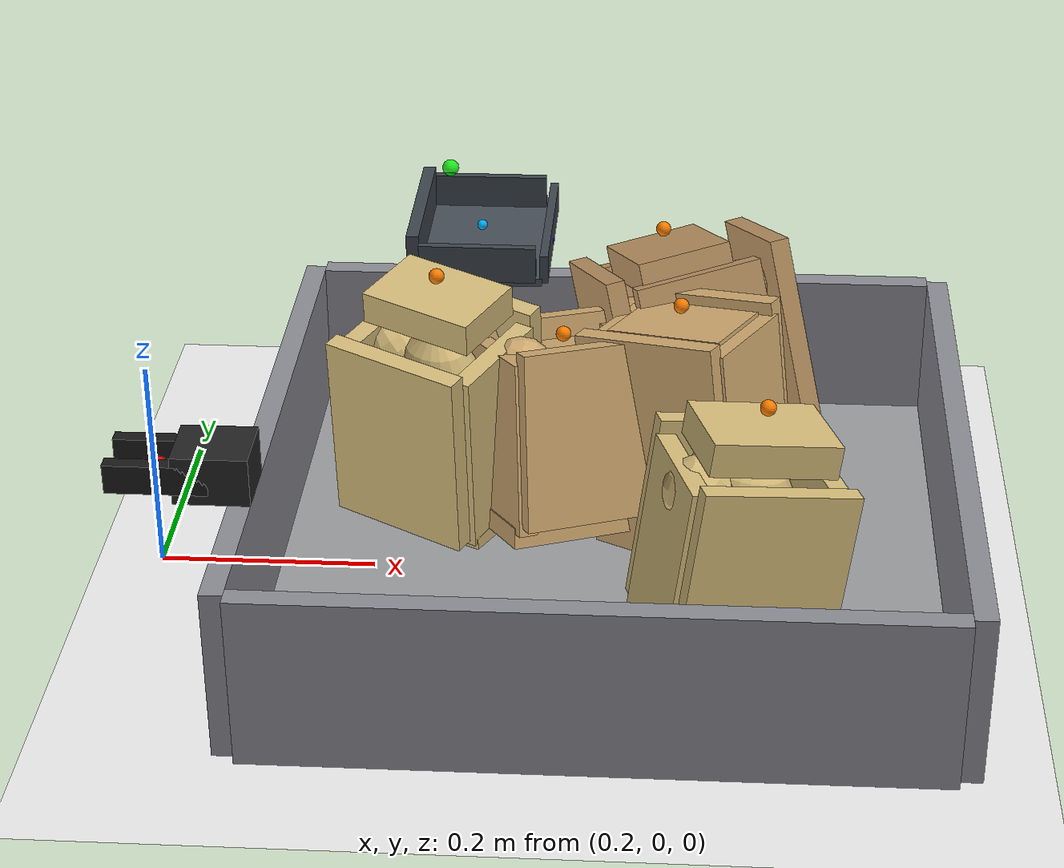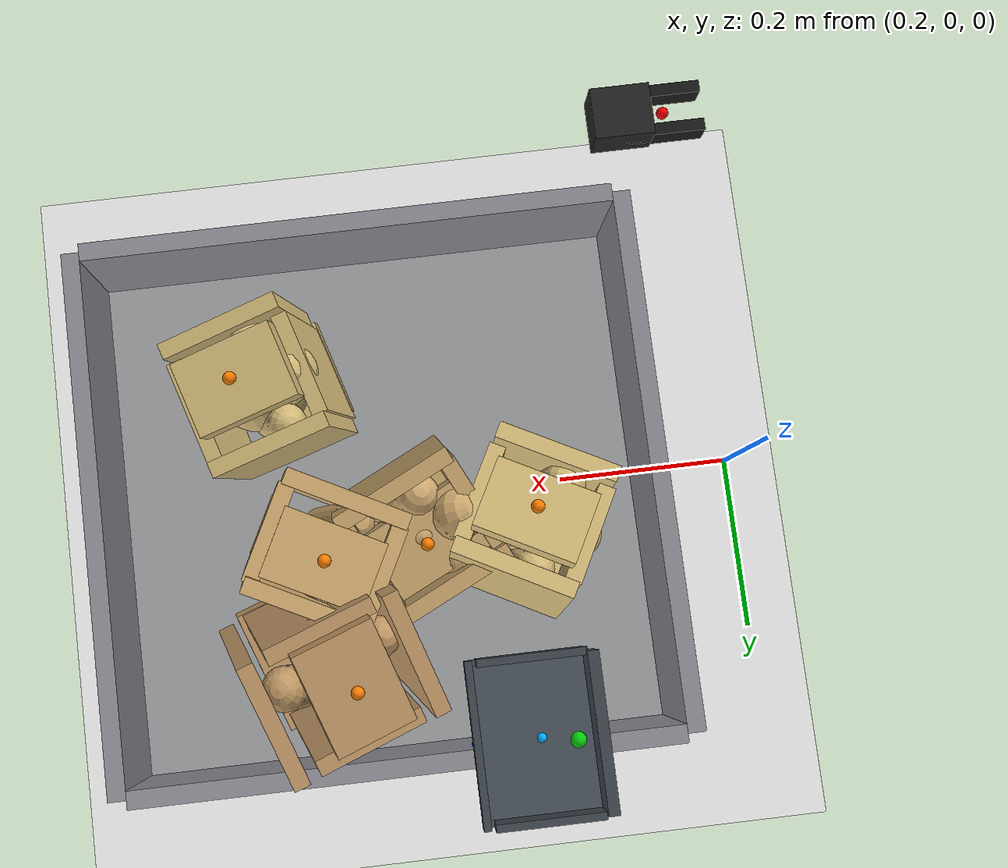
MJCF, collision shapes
<mujoco model="top_grasp_flat_scoop_drag_seed5">
  <compiler angle="radian" coordinate="local" inertiafromgeom="true" meshdir="D:/Michael/2025/01.Research/01.Parceldetection/16.Pybullet/bullet3-master (1)/bullet3-master/examples/pybullet/examples/DeformableTest/Sackcodex2/object"/>
  <option timestep="0.002" gravity="0 0 -9.81" integrator="implicitfast" iterations="100" tolerance="1e-8"/>
  <size memory="768M" nconmax="12000"/>

  <visual>
    <global azimuth="128" elevation="-20"/>
    <headlight ambient="0.34 0.34 0.34" diffuse="0.78 0.78 0.78" specular="0.15 0.15 0.15"/>
    <rgba haze="0.11 0.13 0.18 1"/>
  </visual>

  <default>
    <geom condim="4" friction="1.15 0.03 0.01" margin="0.003" solimp="0.93 0.98 0.003" solref="0.012 1"/>
    <joint damping="1.2" armature="0.002"/>
    <position kp="2500" forcelimited="true" forcerange="-420 420"/>
    <motor ctrllimited="true"/>
  </default>

  <asset>
    <mesh name="sack_0_visual_mesh" file="sack9.obj" scale="0.0670 0.0670 0.0708"/>
    <mesh name="sack_1_visual_mesh" file="sack2.obj" scale="0.0742 0.0742 0.0783"/>
    <mesh name="sack_2_visual_mesh" file="sack6Apply.obj" scale="0.0679 0.0679 0.0698"/>
    <mesh name="sack_3_visual_mesh" file="sack9.obj" scale="0.0700 0.0700 0.0775"/>
    <mesh name="sack_4_visual_mesh" file="sack.obj" scale="0.0664 0.0664 0.0691"/>
  </asset>

  <worldbody>
    <light name="key" pos="0.85 0.15 1.8" dir="-0.2 -0.1 -1" directional="true"/>
    <geom name="floor" type="plane" size="2 2 0.1" rgba="0.93 0.93 0.93 1"/>
    <geom name="work_pad" type="box" pos="0.62 0 0.012" size="0.30 0.30 0.012" rgba="0.60 0.61 0.62 1" friction="1.4 0.05 0.01"/>
    <geom name="corral_front" type="box" pos="0.93 0.00 0.08" size="0.010 0.30 0.08" rgba="0.55 0.55 0.58 0.22" friction="1.0 0.03 0.01"/>
    <geom name="corral_back" type="box" pos="0.31 0.00 0.08" size="0.010 0.30 0.08" rgba="0.55 0.55 0.58 0.18" friction="1.0 0.03 0.01"/>
    <geom name="corral_left" type="box" pos="0.62 0.30 0.08" size="0.30 0.010 0.08" rgba="0.55 0.55 0.58 0.14" friction="1.0 0.03 0.01"/>
    <geom name="corral_right" type="box" pos="0.62 -0.30 0.08" size="0.30 0.010 0.08" rgba="0.55 0.55 0.58 0.14" friction="1.0 0.03 0.01"/>
    <camera name="overview" pos="1.22 0.00 0.92" xyaxes="0 1 0 -0.46 0 0.88"/>

    <body name="gripper_mocap" mocap="true" pos="0.36 -0.33 0.30" quat="0.707107 0 -0.707107 0"/>
    <body name="scoop_mocap" mocap="true" pos="0.42 0.28 0.20" quat="1 0 0 0"/>

    <body name="gripper_ctrl_base" pos="0.36 -0.33 0.30">
      <inertial pos="0 0 0" mass="0.001" diaginertia="1e-6 1e-6 1e-6"/>
      <joint name="gripper_ctrl_x" type="slide" axis="1 0 0" limited="true" range="0.20 1.00"/>
      <body name="gripper_ctrl_y_body">
        <inertial pos="0 0 0" mass="0.001" diaginertia="1e-6 1e-6 1e-6"/>
        <joint name="gripper_ctrl_y" type="slide" axis="0 1 0" limited="true" range="-0.60 0.60"/>
        <body name="gripper_ctrl_z_body">
          <inertial pos="0 0 0" mass="0.001" diaginertia="1e-6 1e-6 1e-6"/>
          <joint name="gripper_ctrl_z" type="slide" axis="0 0 1" limited="true" range="0.04 0.70"/>
          <body name="gripper_ctrl_yaw_body">
            <inertial pos="0 0 0" mass="0.001" diaginertia="1e-6 1e-6 1e-6"/>
            <joint name="gripper_ctrl_yaw" type="hinge" axis="0 0 1" limited="true" range="-3.1416 3.1416"/>
            <body name="gripper_ctrl_pitch_body">
              <inertial pos="0 0 0" mass="0.001" diaginertia="1e-6 1e-6 1e-6"/>
              <joint name="gripper_ctrl_pitch" type="hinge" axis="0 1 0" limited="true" range="-3.1416 3.1416"/>
              <body name="gripper_ctrl_roll_body">
                <inertial pos="0 0 0" mass="0.001" diaginertia="1e-6 1e-6 1e-6"/>
                <joint name="gripper_ctrl_roll" type="hinge" axis="1 0 0" limited="true" range="-3.1416 3.1416"/>
              </body>
            </body>
          </body>
        </body>
      </body>
    </body>

    <body name="scoop_ctrl_base" pos="0.42 0.28 0.20">
      <inertial pos="0 0 0" mass="0.001" diaginertia="1e-6 1e-6 1e-6"/>
      <joint name="scoop_ctrl_x" type="slide" axis="1 0 0" limited="true" range="0.20 1.00"/>
      <body name="scoop_ctrl_y_body">
        <inertial pos="0 0 0" mass="0.001" diaginertia="1e-6 1e-6 1e-6"/>
        <joint name="scoop_ctrl_y" type="slide" axis="0 1 0" limited="true" range="-0.60 0.60"/>
        <body name="scoop_ctrl_z_body">
          <inertial pos="0 0 0" mass="0.001" diaginertia="1e-6 1e-6 1e-6"/>
          <joint name="scoop_ctrl_z" type="slide" axis="0 0 1" limited="true" range="0.04 0.70"/>
          <body name="scoop_ctrl_yaw_body">
            <inertial pos="0 0 0" mass="0.001" diaginertia="1e-6 1e-6 1e-6"/>
            <joint name="scoop_ctrl_yaw" type="hinge" axis="0 0 1" limited="true" range="-3.1416 3.1416"/>
            <body name="scoop_ctrl_pitch_body">
              <inertial pos="0 0 0" mass="0.001" diaginertia="1e-6 1e-6 1e-6"/>
              <joint name="scoop_ctrl_pitch" type="hinge" axis="0 1 0" limited="true" range="-3.1416 3.1416"/>
              <body name="scoop_ctrl_roll_body">
                <inertial pos="0 0 0" mass="0.001" diaginertia="1e-6 1e-6 1e-6"/>
                <joint name="scoop_ctrl_roll" type="hinge" axis="1 0 0" limited="true" range="-3.1416 3.1416"/>
              </body>
            </body>
          </body>
        </body>
      </body>
    </body>

    <body name="gripper_tool" pos="0.36 -0.33 0.30" quat="0.707107 0 -0.707107 0">
      <freejoint name="gripper_tool_free"/>
      <inertial pos="0 0 0.04" mass="0.08" diaginertia="0.0002 0.0002 0.0002"/>
      <geom name="gripper_palm" type="box" pos="0 0 0.030" size="0.020 0.026 0.030" rgba="0.14 0.14 0.14 1"/>
      <body name="left_finger_body" pos="0 0 0.072">
        <joint name="left_finger_slide" type="slide" axis="0 1 0" limited="true" range="0.010 0.040" damping="12"/>
        <geom name="left_finger_geom" type="box" pos="0 0.020 0" size="0.012 0.006 0.040" rgba="0.10 0.10 0.10 1" friction="2.2 0.05 0.01"/>
      </body>
      <body name="right_finger_body" pos="0 0 0.072">
        <joint name="right_finger_slide" type="slide" axis="0 -1 0" limited="true" range="0.010 0.040" damping="12"/>
        <geom name="right_finger_geom" type="box" pos="0 -0.020 0" size="0.012 0.006 0.040" rgba="0.10 0.10 0.10 1" friction="2.2 0.05 0.01"/>
      </body>
      <site name="gripper_pinch_site" pos="0 0 0.074" size="0.006" rgba="1 0 0 1"/>
    </body>

    <body name="scoop_tool" pos="0.42 0.28 0.20" quat="1 0 0 0">
      <freejoint name="scoop_tool_free"/>
      <inertial pos="0 0 0.02" mass="0.10" diaginertia="0.0003 0.0003 0.0003"/>
      <geom name="scoop_plate" type="box" pos="0.062 0 0" size="0.062 0.085 0.004" rgba="0.28 0.31 0.35 1" friction="1.7 0.05 0.01"/>
      <geom name="scoop_lip" type="box" pos="0.126 0 0.014" size="0.004 0.085 0.014" rgba="0.24 0.27 0.30 1" friction="1.7 0.05 0.01"/>
      <geom name="scoop_left_rail" type="box" pos="0.062 0.082 0.018" size="0.056 0.004 0.018" rgba="0.24 0.27 0.30 1"/>
      <geom name="scoop_right_rail" type="box" pos="0.062 -0.082 0.018" size="0.056 0.004 0.018" rgba="0.24 0.27 0.30 1"/>
      <geom name="scoop_backstop" type="box" pos="0.000 0 0.022" size="0.006 0.082 0.022" rgba="0.24 0.27 0.30 1"/>
      <site name="scoop_tip_site" pos="0.126 0 0.005" size="0.005" rgba="0 0 1 1"/>
      <site name="scoop_center_site" pos="0.060 0 0.020" size="0.005" rgba="0 0.7 1 1"/>
      <site name="score_overlay_site" pos="0.030 0 0.080" size="0.008" rgba="0 1 0 0.8"/>
    </body>

    <body name="sack_0" pos="0.4581 0.0612 0.1272" euler="0.1105 -0.0086 2.6535">
      <freejoint name="sack_0_free"/>

      <geom name="sack_0_visual" type="mesh" mesh="sack_0_visual_mesh" rgba="0.840 0.740 0.480 0.92" contype="0" conaffinity="0"/>
      <site name="sack_0_center_site" pos="0 0 0.000" size="0.006" rgba="0 1 0 1"/>
      <site name="sack_0_top_site" pos="0 -0.0060 0.1498" size="0.007" rgba="1 0.5 0 1"/>
      <site name="sack_0_side_site" pos="0.0000 -0.0481 0.018" size="0.007" rgba="1 0.8 0 1"/>

      <geom name="sack_0_core_geom" type="ellipsoid" pos="0 0 0.0059" size="0.0498 0.0413 0.0880" mass="1.0288" rgba="0.840 0.740 0.480 0.12" friction="1.0 0.03 0.01"/>
      <geom name="sack_0_core_front" type="capsule" fromto="-0.0200 0 -0.0200 0.0450 0 0.0600" size="0.0306" mass="0.2450" rgba="0.840 0.740 0.480 0.10"/>
      <geom name="sack_0_core_left" type="capsule" fromto="-0.008 0.0290 -0.010 0.018 0.0470 0.060" size="0.0241" mass="0.4409" rgba="0.840 0.740 0.480 0.10"/>
      <geom name="sack_0_core_right" type="capsule" fromto="-0.006 -0.0290 -0.008 0.020 -0.0490 0.054" size="0.0221" mass="0.4409" rgba="0.840 0.740 0.480 0.10"/>

      <body name="sack_0_bottom_skin" pos="0 -0.0029 -0.0939">
        <joint name="sack_0_bottom_x" type="slide" axis="1 0 0" limited="true" range="-0.012 0.012" damping="18" stiffness="476.5"/>
        <joint name="sack_0_bottom_y" type="slide" axis="0 1 0" limited="true" range="-0.012 0.012" damping="18" stiffness="476.5"/>
        <joint name="sack_0_bottom_z" type="slide" axis="0 0 1" limited="true" range="-0.008 0.020" damping="24" stiffness="586.9"/>
        <geom name="sack_0_bottom_support" type="box" size="0.0714 0.0541 0.0100" mass="0.1960" rgba="0.840 0.740 0.480 0.34" friction="1.55 0.05 0.01"/>
      </body>

      <body name="sack_0_top_skin" pos="0.0000 -0.0060 0.1198">
        <joint name="sack_0_top_x" type="slide" axis="1 0 0" limited="true" range="-0.018 0.018" damping="12" stiffness="183.1"/>
        <joint name="sack_0_top_y" type="slide" axis="0 1 0" limited="true" range="-0.018 0.018" damping="12" stiffness="183.1"/>
        <joint name="sack_0_top_z" type="slide" axis="0 0 1" limited="true" range="-0.040 0.010" damping="14" stiffness="135.5"/>
        <geom name="sack_0_top_grip" type="box" size="0.0554 0.0381 0.0150" mass="0.1470" rgba="0.840 0.740 0.480 0.26" friction="2.2 0.05 0.01"/>
      </body>

      <body name="sack_0_left_skin" pos="0 0.0671 0.010">
        <joint name="sack_0_left_side_slide" type="slide" axis="0 -1 0" limited="true" range="-0.028 0.016" damping="16" stiffness="240.8"/>
        <geom name="sack_0_side_left" type="box" size="0.0674 0.0090 0.0919" mass="0.1470" rgba="0.840 0.740 0.480 0.24"/>
      </body>

      <body name="sack_0_right_skin" pos="0 -0.0631 0.010">
        <joint name="sack_0_right_side_slide" type="slide" axis="0 1 0" limited="true" range="-0.028 0.016" damping="16" stiffness="223.2"/>
        <geom name="sack_0_side_right" type="box" size="0.0674 0.0090 0.0919" mass="0.1470" rgba="0.840 0.740 0.480 0.24"/>
      </body>

      <body name="sack_0_front_skin" pos="0.0614 0 0.000">
        <joint name="sack_0_front_slide" type="slide" axis="-1 0 0" limited="true" range="-0.022 0.012" damping="15" stiffness="228.3"/>
        <geom name="sack_0_front_panel" type="box" size="0.0090 0.0541 0.0899" mass="0.1225" rgba="0.840 0.740 0.480 0.22"/>
      </body>

      <body name="sack_0_back_skin" pos="-0.0614 0 0.000">
        <joint name="sack_0_back_slide" type="slide" axis="1 0 0" limited="true" range="-0.022 0.012" damping="15" stiffness="210.7"/>
        <geom name="sack_0_back_panel" type="box" size="0.0090 0.0541 0.0899" mass="0.1225" rgba="0.840 0.740 0.480 0.22"/>
      </body>

      <body name="sack_0_local_patch" pos="0.0000 -0.0210 0.0345">
        <joint name="sack_0_bulge_y" type="slide" axis="0 1 0" limited="true" range="-0.020 0.020" damping="8" stiffness="89.0"/>
        <joint name="sack_0_bulge_z" type="slide" axis="0 0 1" limited="true" range="-0.014 0.028" damping="8" stiffness="91.7"/>
        <geom name="sack_0_compliant_patch" type="ellipsoid" size="0.0201 0.0162 0.0261" mass="0.0980" rgba="0.840 0.740 0.480 0.28"/>
      </body>
    </body>

    <body name="sack_1" pos="0.5778 0.0464 0.1279" euler="-0.2233 -0.0335 -2.6896">
      <freejoint name="sack_1_free"/>

      <geom name="sack_1_visual" type="mesh" mesh="sack_1_visual_mesh" rgba="0.820 0.670 0.440 0.92" contype="0" conaffinity="0"/>
      <site name="sack_1_center_site" pos="0 0 0.000" size="0.006" rgba="0 1 0 1"/>
      <site name="sack_1_top_site" pos="0 -0.0060 0.0867" size="0.007" rgba="1 0.5 0 1"/>
      <site name="sack_1_side_site" pos="0.0000 -0.0500 0.018" size="0.007" rgba="1 0.8 0 1"/>

      <geom name="sack_1_core_geom" type="ellipsoid" pos="0 0 0.0055" size="0.0458 0.0360 0.0684" mass="0.7239" rgba="0.820 0.670 0.440 0.12" friction="1.0 0.03 0.01"/>
      <geom name="sack_1_core_front" type="capsule" fromto="-0.0200 0 -0.0200 0.0450 0 0.0600" size="0.0305" mass="0.1724" rgba="0.820 0.670 0.440 0.10"/>
      <geom name="sack_1_core_left" type="capsule" fromto="-0.008 0.0221 -0.010 0.018 0.0401 0.060" size="0.0240" mass="0.3102" rgba="0.820 0.670 0.440 0.10"/>
      <geom name="sack_1_core_right" type="capsule" fromto="-0.006 -0.0221 -0.008 0.020 -0.0421 0.054" size="0.0220" mass="0.3102" rgba="0.820 0.670 0.440 0.10"/>

      <body name="sack_1_bottom_skin" pos="0 -0.0094 -0.0839">
        <joint name="sack_1_bottom_x" type="slide" axis="1 0 0" limited="true" range="-0.012 0.012" damping="18" stiffness="474.8"/>
        <joint name="sack_1_bottom_y" type="slide" axis="0 1 0" limited="true" range="-0.012 0.012" damping="18" stiffness="474.8"/>
        <joint name="sack_1_bottom_z" type="slide" axis="0 0 1" limited="true" range="-0.008 0.020" damping="24" stiffness="584.7"/>
        <geom name="sack_1_bottom_support" type="box" size="0.0734 0.0560 0.0100" mass="0.1379" rgba="0.820 0.670 0.440 0.34" friction="1.55 0.05 0.01"/>
      </body>

      <body name="sack_1_top_skin" pos="0.0000 -0.0060 0.0567">
        <joint name="sack_1_top_x" type="slide" axis="1 0 0" limited="true" range="-0.018 0.018" damping="12" stiffness="182.4"/>
        <joint name="sack_1_top_y" type="slide" axis="0 1 0" limited="true" range="-0.018 0.018" damping="12" stiffness="182.4"/>
        <joint name="sack_1_top_z" type="slide" axis="0 0 1" limited="true" range="-0.040 0.010" damping="14" stiffness="134.9"/>
        <geom name="sack_1_top_grip" type="box" size="0.0574 0.0400 0.0150" mass="0.1034" rgba="0.820 0.670 0.440 0.26" friction="2.2 0.05 0.01"/>
      </body>

      <body name="sack_1_left_skin" pos="0 0.0620 0.010">
        <joint name="sack_1_left_side_slide" type="slide" axis="0 -1 0" limited="true" range="-0.028 0.016" damping="16" stiffness="238.3"/>
        <geom name="sack_1_side_left" type="box" size="0.0694 0.0090 0.0819" mass="0.1034" rgba="0.820 0.670 0.440 0.24"/>
      </body>

      <body name="sack_1_right_skin" pos="0 -0.0580 0.010">
        <joint name="sack_1_right_side_slide" type="slide" axis="0 1 0" limited="true" range="-0.028 0.016" damping="16" stiffness="220.8"/>
        <geom name="sack_1_side_right" type="box" size="0.0694 0.0090 0.0819" mass="0.1034" rgba="0.820 0.670 0.440 0.24"/>
      </body>

      <body name="sack_1_front_skin" pos="0.0634 0 0.000">
        <joint name="sack_1_front_slide" type="slide" axis="-1 0 0" limited="true" range="-0.022 0.012" damping="15" stiffness="227.4"/>
        <geom name="sack_1_front_panel" type="box" size="0.0090 0.0560 0.0799" mass="0.0862" rgba="0.820 0.670 0.440 0.22"/>
      </body>

      <body name="sack_1_back_skin" pos="-0.0634 0 0.000">
        <joint name="sack_1_back_slide" type="slide" axis="1 0 0" limited="true" range="-0.022 0.012" damping="15" stiffness="209.9"/>
        <geom name="sack_1_back_panel" type="box" size="0.0090 0.0560 0.0799" mass="0.0862" rgba="0.820 0.670 0.440 0.22"/>
      </body>

      <body name="sack_1_local_patch" pos="0.0000 -0.0141 0.0351">
        <joint name="sack_1_bulge_y" type="slide" axis="0 1 0" limited="true" range="-0.020 0.020" damping="8" stiffness="90.1"/>
        <joint name="sack_1_bulge_z" type="slide" axis="0 0 1" limited="true" range="-0.014 0.028" damping="8" stiffness="92.6"/>
        <geom name="sack_1_compliant_patch" type="ellipsoid" size="0.0200 0.0160 0.0264" mass="0.0689" rgba="0.820 0.670 0.440 0.28"/>
      </body>
    </body>

    <body name="sack_2" pos="0.6926 0.1857 0.1318" euler="-0.2315 -0.2183 -1.2642">
      <freejoint name="sack_2_free"/>

      <geom name="sack_2_visual" type="mesh" mesh="sack_2_visual_mesh" rgba="0.760 0.600 0.400 0.92" contype="0" conaffinity="0"/>
      <site name="sack_2_center_site" pos="0 0 0.000" size="0.006" rgba="0 1 0 1"/>
      <site name="sack_2_top_site" pos="0 -0.0060 0.1277" size="0.007" rgba="1 0.5 0 1"/>
      <site name="sack_2_side_site" pos="0.0000 -0.0548 0.018" size="0.007" rgba="1 0.8 0 1"/>

      <geom name="sack_2_core_geom" type="ellipsoid" pos="0 0 0.0059" size="0.0441 0.0340 0.0769" mass="0.8605" rgba="0.760 0.600 0.400 0.12" friction="1.0 0.03 0.01"/>
      <geom name="sack_2_core_front" type="capsule" fromto="-0.0200 0 -0.0200 0.0450 0 0.0600" size="0.0296" mass="0.2049" rgba="0.760 0.600 0.400 0.10"/>
      <geom name="sack_2_core_left" type="capsule" fromto="-0.008 0.0382 -0.010 0.018 0.0562 0.060" size="0.0242" mass="0.3688" rgba="0.760 0.600 0.400 0.10"/>
      <geom name="sack_2_core_right" type="capsule" fromto="-0.006 -0.0382 -0.008 0.020 -0.0582 0.054" size="0.0222" mass="0.3688" rgba="0.760 0.600 0.400 0.10"/>

      <body name="sack_2_bottom_skin" pos="0 0.0063 -0.0968">
        <joint name="sack_2_bottom_x" type="slide" axis="1 0 0" limited="true" range="-0.012 0.012" damping="18" stiffness="448.2"/>
        <joint name="sack_2_bottom_y" type="slide" axis="0 1 0" limited="true" range="-0.012 0.012" damping="18" stiffness="448.2"/>
        <joint name="sack_2_bottom_z" type="slide" axis="0 0 1" limited="true" range="-0.008 0.020" damping="24" stiffness="552.2"/>
        <geom name="sack_2_bottom_support" type="box" size="0.0746 0.0608 0.0100" mass="0.1639" rgba="0.760 0.600 0.400 0.34" friction="1.55 0.05 0.01"/>
      </body>

      <body name="sack_2_top_skin" pos="0.0000 -0.0060 0.0977">
        <joint name="sack_2_top_x" type="slide" axis="1 0 0" limited="true" range="-0.018 0.018" damping="12" stiffness="172.1"/>
        <joint name="sack_2_top_y" type="slide" axis="0 1 0" limited="true" range="-0.018 0.018" damping="12" stiffness="172.1"/>
        <joint name="sack_2_top_z" type="slide" axis="0 0 1" limited="true" range="-0.040 0.010" damping="14" stiffness="126.1"/>
        <geom name="sack_2_top_grip" type="box" size="0.0586 0.0448 0.0150" mass="0.1229" rgba="0.760 0.600 0.400 0.26" friction="2.2 0.05 0.01"/>
      </body>

      <body name="sack_2_left_skin" pos="0 0.0830 0.010">
        <joint name="sack_2_left_side_slide" type="slide" axis="0 -1 0" limited="true" range="-0.028 0.016" damping="16" stiffness="221.8"/>
        <geom name="sack_2_side_left" type="box" size="0.0706 0.0090 0.0948" mass="0.1229" rgba="0.760 0.600 0.400 0.24"/>
      </body>

      <body name="sack_2_right_skin" pos="0 -0.0790 0.010">
        <joint name="sack_2_right_side_slide" type="slide" axis="0 1 0" limited="true" range="-0.028 0.016" damping="16" stiffness="205.8"/>
        <geom name="sack_2_side_right" type="box" size="0.0706 0.0090 0.0948" mass="0.1229" rgba="0.760 0.600 0.400 0.24"/>
      </body>

      <body name="sack_2_front_skin" pos="0.0646 0 0.000">
        <joint name="sack_2_front_slide" type="slide" axis="-1 0 0" limited="true" range="-0.022 0.012" damping="15" stiffness="214.1"/>
        <geom name="sack_2_front_panel" type="box" size="0.0090 0.0608 0.0928" mass="0.1024" rgba="0.760 0.600 0.400 0.22"/>
      </body>

      <body name="sack_2_back_skin" pos="-0.0646 0 0.000">
        <joint name="sack_2_back_slide" type="slide" axis="1 0 0" limited="true" range="-0.022 0.012" damping="15" stiffness="198.1"/>
        <geom name="sack_2_back_panel" type="box" size="0.0090 0.0608 0.0928" mass="0.1024" rgba="0.760 0.600 0.400 0.22"/>
      </body>

      <body name="sack_2_local_patch" pos="0.0000 -0.0302 0.0439">
        <joint name="sack_2_bulge_y" type="slide" axis="0 1 0" limited="true" range="-0.020 0.020" damping="8" stiffness="107.9"/>
        <joint name="sack_2_bulge_z" type="slide" axis="0 0 1" limited="true" range="-0.014 0.028" damping="8" stiffness="105.9"/>
        <geom name="sack_2_compliant_patch" type="ellipsoid" size="0.0202 0.0164 0.0261" mass="0.0819" rgba="0.760 0.600 0.400 0.28"/>
      </body>
    </body>

    <body name="sack_3" pos="0.7346 -0.1280 0.1053" euler="-0.0904 0.1356 -2.8480">
      <freejoint name="sack_3_free"/>

      <geom name="sack_3_visual" type="mesh" mesh="sack_3_visual_mesh" rgba="0.840 0.740 0.480 0.92" contype="0" conaffinity="0"/>
      <site name="sack_3_center_site" pos="0 0 0.000" size="0.006" rgba="0 1 0 1"/>
      <site name="sack_3_top_site" pos="0 0.0060 0.1434" size="0.007" rgba="1 0.5 0 1"/>
      <site name="sack_3_side_site" pos="0.0000 0.0522 0.018" size="0.007" rgba="1 0.8 0 1"/>

      <geom name="sack_3_core_geom" type="ellipsoid" pos="0 0 0.0059" size="0.0512 0.0435 0.0917" mass="1.0826" rgba="0.840 0.740 0.480 0.12" friction="1.0 0.03 0.01"/>
      <geom name="sack_3_core_front" type="capsule" fromto="-0.0200 0 -0.0200 0.0450 0 0.0600" size="0.0322" mass="0.2578" rgba="0.840 0.740 0.480 0.10"/>
      <geom name="sack_3_core_left" type="capsule" fromto="-0.008 0.0293 -0.010 0.018 0.0473 0.060" size="0.0241" mass="0.4640" rgba="0.840 0.740 0.480 0.10"/>
      <geom name="sack_3_core_right" type="capsule" fromto="-0.006 -0.0293 -0.008 0.020 -0.0493 0.054" size="0.0221" mass="0.4640" rgba="0.840 0.740 0.480 0.10"/>

      <body name="sack_3_bottom_skin" pos="0 0.0090 -0.0898">
        <joint name="sack_3_bottom_x" type="slide" axis="1 0 0" limited="true" range="-0.012 0.012" damping="18" stiffness="527.3"/>
        <joint name="sack_3_bottom_y" type="slide" axis="0 1 0" limited="true" range="-0.012 0.012" damping="18" stiffness="527.3"/>
        <joint name="sack_3_bottom_z" type="slide" axis="0 0 1" limited="true" range="-0.008 0.020" damping="24" stiffness="648.9"/>
        <geom name="sack_3_bottom_support" type="box" size="0.0730 0.0582 0.0100" mass="0.2062" rgba="0.840 0.740 0.480 0.34" friction="1.55 0.05 0.01"/>
      </body>

      <body name="sack_3_top_skin" pos="0.0000 0.0060 0.1134">
        <joint name="sack_3_top_x" type="slide" axis="1 0 0" limited="true" range="-0.018 0.018" damping="12" stiffness="202.8"/>
        <joint name="sack_3_top_y" type="slide" axis="0 1 0" limited="true" range="-0.018 0.018" damping="12" stiffness="202.8"/>
        <joint name="sack_3_top_z" type="slide" axis="0 0 1" limited="true" range="-0.040 0.010" damping="14" stiffness="152.4"/>
        <geom name="sack_3_top_grip" type="box" size="0.0570 0.0422 0.0150" mass="0.1547" rgba="0.840 0.740 0.480 0.26" friction="2.2 0.05 0.01"/>
      </body>

      <body name="sack_3_left_skin" pos="0 0.0715 0.010">
        <joint name="sack_3_left_side_slide" type="slide" axis="0 -1 0" limited="true" range="-0.028 0.016" damping="16" stiffness="274.6"/>
        <geom name="sack_3_side_left" type="box" size="0.0690 0.0090 0.0878" mass="0.1547" rgba="0.840 0.740 0.480 0.24"/>
      </body>

      <body name="sack_3_right_skin" pos="0 -0.0675 0.010">
        <joint name="sack_3_right_side_slide" type="slide" axis="0 1 0" limited="true" range="-0.028 0.016" damping="16" stiffness="254.2"/>
        <geom name="sack_3_side_right" type="box" size="0.0690 0.0090 0.0878" mass="0.1547" rgba="0.840 0.740 0.480 0.24"/>
      </body>

      <body name="sack_3_front_skin" pos="0.0630 0 0.000">
        <joint name="sack_3_front_slide" type="slide" axis="-1 0 0" limited="true" range="-0.022 0.012" damping="15" stiffness="253.6"/>
        <geom name="sack_3_front_panel" type="box" size="0.0090 0.0582 0.0858" mass="0.1289" rgba="0.840 0.740 0.480 0.22"/>
      </body>

      <body name="sack_3_back_skin" pos="-0.0630 0 0.000">
        <joint name="sack_3_back_slide" type="slide" axis="1 0 0" limited="true" range="-0.022 0.012" damping="15" stiffness="233.2"/>
        <geom name="sack_3_back_panel" type="box" size="0.0090 0.0582 0.0858" mass="0.1289" rgba="0.840 0.740 0.480 0.22"/>
      </body>

      <body name="sack_3_local_patch" pos="0.0000 0.0213 0.0176">
        <joint name="sack_3_bulge_y" type="slide" axis="0 1 0" limited="true" range="-0.020 0.020" damping="8" stiffness="60.0"/>
        <joint name="sack_3_bulge_z" type="slide" axis="0 0 1" limited="true" range="-0.014 0.028" damping="8" stiffness="70.0"/>
        <geom name="sack_3_compliant_patch" type="ellipsoid" size="0.0201 0.0162 0.0261" mass="0.1031" rgba="0.840 0.740 0.480 0.28"/>
      </body>
    </body>

    <body name="sack_4" pos="0.6901 0.0586 0.1152" euler="-0.1059 -0.1084 2.6653">
      <freejoint name="sack_4_free"/>

      <geom name="sack_4_visual" type="mesh" mesh="sack_4_visual_mesh" rgba="0.820 0.670 0.440 0.92" contype="0" conaffinity="0"/>
      <site name="sack_4_center_site" pos="0 0 0.000" size="0.006" rgba="0 1 0 1"/>
      <site name="sack_4_top_site" pos="0 -0.0060 0.1262" size="0.007" rgba="1 0.5 0 1"/>
      <site name="sack_4_side_site" pos="0.0000 -0.0489 0.018" size="0.007" rgba="1 0.8 0 1"/>

      <geom name="sack_4_core_geom" type="ellipsoid" pos="0 0 0.0057" size="0.0454 0.0355 0.0677" mass="0.7394" rgba="0.820 0.670 0.440 0.12" friction="1.0 0.03 0.01"/>
      <geom name="sack_4_core_front" type="capsule" fromto="-0.0200 0 -0.0200 0.0450 0 0.0600" size="0.0300" mass="0.1760" rgba="0.820 0.670 0.440 0.10"/>
      <geom name="sack_4_core_left" type="capsule" fromto="-0.008 0.0228 -0.010 0.018 0.0408 0.060" size="0.0240" mass="0.3169" rgba="0.820 0.670 0.440 0.10"/>
      <geom name="sack_4_core_right" type="capsule" fromto="-0.006 -0.0228 -0.008 0.020 -0.0428 0.054" size="0.0220" mass="0.3169" rgba="0.820 0.670 0.440 0.10"/>

      <body name="sack_4_bottom_skin" pos="0 -0.0150 -0.1113">
        <joint name="sack_4_bottom_x" type="slide" axis="1 0 0" limited="true" range="-0.012 0.012" damping="18" stiffness="461.1"/>
        <joint name="sack_4_bottom_y" type="slide" axis="0 1 0" limited="true" range="-0.012 0.012" damping="18" stiffness="461.1"/>
        <joint name="sack_4_bottom_z" type="slide" axis="0 0 1" limited="true" range="-0.008 0.020" damping="24" stiffness="568.1"/>
        <geom name="sack_4_bottom_support" type="box" size="0.0730 0.0549 0.0100" mass="0.1408" rgba="0.820 0.670 0.440 0.34" friction="1.55 0.05 0.01"/>
      </body>

      <body name="sack_4_top_skin" pos="0.0000 -0.0060 0.0962">
        <joint name="sack_4_top_x" type="slide" axis="1 0 0" limited="true" range="-0.018 0.018" damping="12" stiffness="177.1"/>
        <joint name="sack_4_top_y" type="slide" axis="0 1 0" limited="true" range="-0.018 0.018" damping="12" stiffness="177.1"/>
        <joint name="sack_4_top_z" type="slide" axis="0 0 1" limited="true" range="-0.040 0.010" damping="14" stiffness="130.4"/>
        <geom name="sack_4_top_grip" type="box" size="0.0570 0.0389 0.0150" mass="0.1056" rgba="0.820 0.670 0.440 0.26" friction="2.2 0.05 0.01"/>
      </body>

      <body name="sack_4_left_skin" pos="0 0.0616 0.010">
        <joint name="sack_4_left_side_slide" type="slide" axis="0 -1 0" limited="true" range="-0.028 0.016" damping="16" stiffness="229.9"/>
        <geom name="sack_4_side_left" type="box" size="0.0690 0.0090 0.1093" mass="0.1056" rgba="0.820 0.670 0.440 0.24"/>
      </body>

      <body name="sack_4_right_skin" pos="0 -0.0576 0.010">
        <joint name="sack_4_right_side_slide" type="slide" axis="0 1 0" limited="true" range="-0.028 0.016" damping="16" stiffness="213.2"/>
        <geom name="sack_4_side_right" type="box" size="0.0690 0.0090 0.1093" mass="0.1056" rgba="0.820 0.670 0.440 0.24"/>
      </body>

      <body name="sack_4_front_skin" pos="0.0630 0 0.000">
        <joint name="sack_4_front_slide" type="slide" axis="-1 0 0" limited="true" range="-0.022 0.012" damping="15" stiffness="220.6"/>
        <geom name="sack_4_front_panel" type="box" size="0.0090 0.0549 0.1073" mass="0.0880" rgba="0.820 0.670 0.440 0.22"/>
      </body>

      <body name="sack_4_back_skin" pos="-0.0630 0 0.000">
        <joint name="sack_4_back_slide" type="slide" axis="1 0 0" limited="true" range="-0.022 0.012" damping="15" stiffness="203.8"/>
        <geom name="sack_4_back_panel" type="box" size="0.0090 0.0549 0.1073" mass="0.0880" rgba="0.820 0.670 0.440 0.22"/>
      </body>

      <body name="sack_4_local_patch" pos="0.0000 -0.0148 0.0396">
        <joint name="sack_4_bulge_y" type="slide" axis="0 1 0" limited="true" range="-0.020 0.020" damping="8" stiffness="99.2"/>
        <joint name="sack_4_bulge_z" type="slide" axis="0 0 1" limited="true" range="-0.014 0.028" damping="8" stiffness="99.4"/>
        <geom name="sack_4_compliant_patch" type="ellipsoid" size="0.0200 0.0161 0.0262" mass="0.0704" rgba="0.820 0.670 0.440 0.28"/>
      </body>
    </body>
  </worldbody>

  <equality>
    <weld name="gripper_follow" body1="gripper_mocap" body2="gripper_tool" torquescale="400" solref="0.002 1" solimp="0.99 0.999 0.0001"/>
    <weld name="scoop_follow" body1="scoop_mocap" body2="scoop_tool" torquescale="500" solref="0.002 1" solimp="0.99 0.999 0.0001"/>
  </equality>

  <actuator>
    <position name="gripper_ctrl_x_act" joint="gripper_ctrl_x" ctrlrange="0.20 1.00" kp="3500" forcerange="-300 300"/>
    <position name="gripper_ctrl_y_act" joint="gripper_ctrl_y" ctrlrange="-0.60 0.60" kp="3500" forcerange="-300 300"/>
    <position name="gripper_ctrl_z_act" joint="gripper_ctrl_z" ctrlrange="0.04 0.70" kp="3500" forcerange="-300 300"/>
    <position name="gripper_ctrl_yaw_act" joint="gripper_ctrl_yaw" ctrlrange="-3.1416 3.1416" kp="1800" forcerange="-250 250"/>
    <position name="gripper_ctrl_pitch_act" joint="gripper_ctrl_pitch" ctrlrange="-3.1416 3.1416" kp="1800" forcerange="-250 250"/>
    <position name="gripper_ctrl_roll_act" joint="gripper_ctrl_roll" ctrlrange="-3.1416 3.1416" kp="1800" forcerange="-250 250"/>
    <position name="scoop_ctrl_x_act" joint="scoop_ctrl_x" ctrlrange="0.20 1.00" kp="3500" forcerange="-300 300"/>
    <position name="scoop_ctrl_y_act" joint="scoop_ctrl_y" ctrlrange="-0.60 0.60" kp="3500" forcerange="-300 300"/>
    <position name="scoop_ctrl_z_act" joint="scoop_ctrl_z" ctrlrange="0.04 0.70" kp="3500" forcerange="-300 300"/>
    <position name="scoop_ctrl_yaw_act" joint="scoop_ctrl_yaw" ctrlrange="-3.1416 3.1416" kp="1800" forcerange="-250 250"/>
    <position name="scoop_ctrl_pitch_act" joint="scoop_ctrl_pitch" ctrlrange="-3.1416 3.1416" kp="1800" forcerange="-250 250"/>
    <position name="scoop_ctrl_roll_act" joint="scoop_ctrl_roll" ctrlrange="-3.1416 3.1416" kp="1800" forcerange="-250 250"/>
    <position name="left_finger_act" joint="left_finger_slide" ctrlrange="0.010 0.040" kp="2800" forcerange="-220 220"/>
    <position name="right_finger_act" joint="right_finger_slide" ctrlrange="0.010 0.040" kp="2800" forcerange="-220 220"/>
  </actuator>

  <contact>
    <exclude body1="sack_0_top_skin" body2="sack_0_left_skin"/>
    <exclude body1="sack_0_top_skin" body2="sack_0_right_skin"/>
    <exclude body1="sack_1_top_skin" body2="sack_1_left_skin"/>
    <exclude body1="sack_1_top_skin" body2="sack_1_right_skin"/>
    <exclude body1="sack_2_top_skin" body2="sack_2_left_skin"/>
    <exclude body1="sack_2_top_skin" body2="sack_2_right_skin"/>
    <exclude body1="sack_3_top_skin" body2="sack_3_left_skin"/>
    <exclude body1="sack_3_top_skin" body2="sack_3_right_skin"/>
    <exclude body1="sack_4_top_skin" body2="sack_4_left_skin"/>
    <exclude body1="sack_4_top_skin" body2="sack_4_right_skin"/>
  </contact>
</mujoco>
